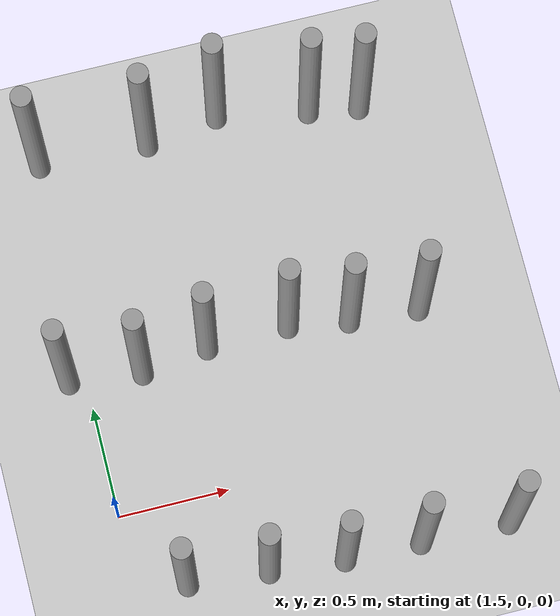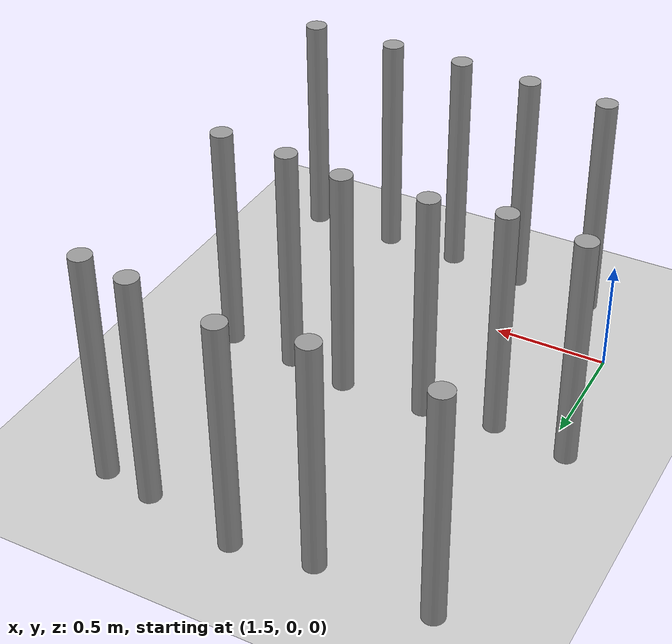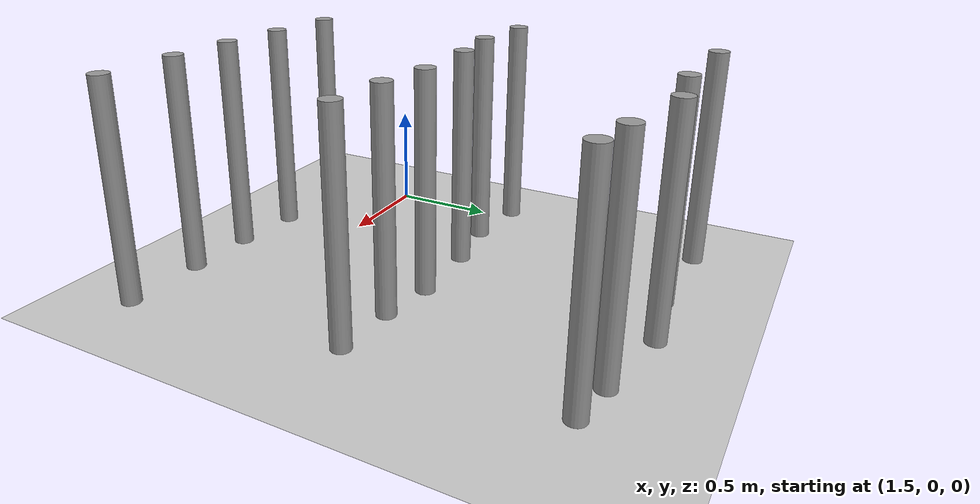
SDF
<sdf version="1.7">
 <world name="default">
  <model name="ground_plane">
   <static>1</static>
   <link name="link">
    <collision name="collision">
     <geometry><plane><normal>0 0 1</normal><size>100 100</size></plane></geometry>
     <surface><friction><ode><mu>100</mu><mu2>50</mu2></ode></friction></surface>
    </collision>
    <visual name="visual">
     <cast_shadows>0</cast_shadows>
     <geometry><plane><normal>0 0 1</normal><size>100 100</size></plane></geometry>
     <material>
      <script><uri>file://media/materials/scripts/gazebo.material</uri><name>Gazebo/Grey</name></script>
     </material>
    </visual>
   </link>
  </model>
  <model name="bar_clone_4">
   <link name="link_0">
    <inertial>
     <mass>0.00953712</mass>
     <inertia>
      <ixx>0.000924862</ixx>
      <ixy>0</ixy>
      <ixz>0</ixz>
      <iyy>0.000924862</iyy>
      <iyz>0</iyz>
      <izz>1.05584e-05</izz>
     </inertia>
    </inertial>
    <visual name="visual">
     <geometry><cylinder><radius>0.0470549</radius><length>1.07567</length></cylinder></geometry>
     <material>
      <lighting>1</lighting>
      <script><uri>file://media/materials/scripts/gazebo.material</uri><name>Gazebo/Grey</name></script>
      <shader type="pixel"><normal_map>__default__</normal_map></shader>
     </material>
    </visual>
    <collision name="collision">
     <geometry><cylinder><radius>0.047055</radius><length>1.07567</length></cylinder></geometry>
     <surface>
      <friction>
       <ode><mu>1</mu><mu2>1</mu2><fdir1>0 0 0</fdir1><slip1>0</slip1><slip2>0</slip2></ode>
       <torsional>
        <coefficient>1</coefficient>
        <patch_radius>0</patch_radius>
        <surface_radius>0</surface_radius>
        <use_patch_radius>1</use_patch_radius>
        <ode><slip>0</slip></ode>
       </torsional>
      </friction>
      <bounce><restitution_coefficient>0</restitution_coefficient><threshold>1e+06</threshold></bounce>
      <contact>
       <collide_without_contact>0</collide_without_contact>
       <collide_without_contact_bitmask>1</collide_without_contact_bitmask>
       <collide_bitmask>1</collide_bitmask>
       <ode>
        <soft_cfm>0</soft_cfm>
        <soft_erp>0.2</soft_erp>
        <kp>1e+13</kp>
        <kd>1</kd>
        <max_vel>0.01</max_vel>
        <min_depth>0</min_depth>
       </ode>
       <bullet>
        <split_impulse>1</split_impulse>
        <split_impulse_penetration_threshold>-0.01</split_impulse_penetration_threshold>
        <soft_cfm>0</soft_cfm>
        <soft_erp>0.2</soft_erp>
        <kp>1e+13</kp>
        <kd>1</kd>
       </bullet>
      </contact>
     </surface>
    </collision>
   </link>
   <static>0</static>
   <pose>1.72439 -0.372293 0.5 0 -0 0</pose>
  </model>
  <model name="bar_clone_5">
   <link name="link_0">
    <inertial>
     <mass>0.00953712</mass>
     <inertia>
      <ixx>0.000924862</ixx>
      <ixy>0</ixy>
      <ixz>0</ixz>
      <iyy>0.000924862</iyy>
      <iyz>0</iyz>
      <izz>1.05584e-05</izz>
     </inertia>
    </inertial>
    <visual name="visual">
     <geometry><cylinder><radius>0.0470549</radius><length>1.07567</length></cylinder></geometry>
     <material>
      <lighting>1</lighting>
      <script><uri>file://media/materials/scripts/gazebo.material</uri><name>Gazebo/Grey</name></script>
      <shader type="pixel"><normal_map>__default__</normal_map></shader>
     </material>
    </visual>
    <collision name="collision">
     <geometry><cylinder><radius>0.047055</radius><length>1.07567</length></cylinder></geometry>
     <surface>
      <friction>
       <ode><mu>1</mu><mu2>1</mu2><fdir1>0 0 0</fdir1><slip1>0</slip1><slip2>0</slip2></ode>
       <torsional>
        <coefficient>1</coefficient>
        <patch_radius>0</patch_radius>
        <surface_radius>0</surface_radius>
        <use_patch_radius>1</use_patch_radius>
        <ode><slip>0</slip></ode>
       </torsional>
      </friction>
      <bounce><restitution_coefficient>0</restitution_coefficient><threshold>1e+06</threshold></bounce>
      <contact>
       <collide_without_contact>0</collide_without_contact>
       <collide_without_contact_bitmask>1</collide_without_contact_bitmask>
       <collide_bitmask>1</collide_bitmask>
       <ode>
        <soft_cfm>0</soft_cfm>
        <soft_erp>0.2</soft_erp>
        <kp>1e+13</kp>
        <kd>1</kd>
        <max_vel>0.01</max_vel>
        <min_depth>0</min_depth>
       </ode>
       <bullet>
        <split_impulse>1</split_impulse>
        <split_impulse_penetration_threshold>-0.01</split_impulse_penetration_threshold>
        <soft_cfm>0</soft_cfm>
        <soft_erp>0.2</soft_erp>
        <kp>1e+13</kp>
        <kd>1</kd>
       </bullet>
      </contact>
     </surface>
    </collision>
   </link>
   <static>0</static>
   <pose>2.08498 -0.403404 0.5 0 -0 0</pose>
  </model>
  <model name="bar_clone_6">
   <link name="link_0">
    <inertial>
     <mass>0.00953712</mass>
     <inertia>
      <ixx>0.000924862</ixx>
      <ixy>0</ixy>
      <ixz>0</ixz>
      <iyy>0.000924862</iyy>
      <iyz>0</iyz>
      <izz>1.05584e-05</izz>
     </inertia>
    </inertial>
    <visual name="visual">
     <geometry><cylinder><radius>0.0470549</radius><length>1.07567</length></cylinder></geometry>
     <material>
      <lighting>1</lighting>
      <script><uri>file://media/materials/scripts/gazebo.material</uri><name>Gazebo/Grey</name></script>
      <shader type="pixel"><normal_map>__default__</normal_map></shader>
     </material>
    </visual>
    <collision name="collision">
     <geometry><cylinder><radius>0.047055</radius><length>1.07567</length></cylinder></geometry>
     <surface>
      <friction>
       <ode><mu>1</mu><mu2>1</mu2><fdir1>0 0 0</fdir1><slip1>0</slip1><slip2>0</slip2></ode>
       <torsional>
        <coefficient>1</coefficient>
        <patch_radius>0</patch_radius>
        <surface_radius>0</surface_radius>
        <use_patch_radius>1</use_patch_radius>
        <ode><slip>0</slip></ode>
       </torsional>
      </friction>
      <bounce><restitution_coefficient>0</restitution_coefficient><threshold>1e+06</threshold></bounce>
      <contact>
       <collide_without_contact>0</collide_without_contact>
       <collide_without_contact_bitmask>1</collide_without_contact_bitmask>
       <collide_bitmask>1</collide_bitmask>
       <ode>
        <soft_cfm>0</soft_cfm>
        <soft_erp>0.2</soft_erp>
        <kp>1e+13</kp>
        <kd>1</kd>
        <max_vel>0.01</max_vel>
        <min_depth>0</min_depth>
       </ode>
       <bullet>
        <split_impulse>1</split_impulse>
        <split_impulse_penetration_threshold>-0.01</split_impulse_penetration_threshold>
        <soft_cfm>0</soft_cfm>
        <soft_erp>0.2</soft_erp>
        <kp>1e+13</kp>
        <kd>1</kd>
       </bullet>
      </contact>
     </surface>
    </collision>
   </link>
   <static>0</static>
   <pose>2.4203 -0.432616 0.5 0 -0 0</pose>
  </model>
  <model name="bar_clone_7">
   <link name="link_0">
    <inertial>
     <mass>0.00953712</mass>
     <inertia>
      <ixx>0.000924862</ixx>
      <ixy>0</ixy>
      <ixz>0</ixz>
      <iyy>0.000924862</iyy>
      <iyz>0</iyz>
      <izz>1.05584e-05</izz>
     </inertia>
    </inertial>
    <visual name="visual">
     <geometry><cylinder><radius>0.0470549</radius><length>1.07567</length></cylinder></geometry>
     <material>
      <lighting>1</lighting>
      <script><uri>file://media/materials/scripts/gazebo.material</uri><name>Gazebo/Grey</name></script>
      <shader type="pixel"><normal_map>__default__</normal_map></shader>
     </material>
    </visual>
    <collision name="collision">
     <geometry><cylinder><radius>0.047055</radius><length>1.07567</length></cylinder></geometry>
     <surface>
      <friction>
       <ode><mu>1</mu><mu2>1</mu2><fdir1>0 0 0</fdir1><slip1>0</slip1><slip2>0</slip2></ode>
       <torsional>
        <coefficient>1</coefficient>
        <patch_radius>0</patch_radius>
        <surface_radius>0</surface_radius>
        <use_patch_radius>1</use_patch_radius>
        <ode><slip>0</slip></ode>
       </torsional>
      </friction>
      <bounce><restitution_coefficient>0</restitution_coefficient><threshold>1e+06</threshold></bounce>
      <contact>
       <collide_without_contact>0</collide_without_contact>
       <collide_without_contact_bitmask>1</collide_without_contact_bitmask>
       <collide_bitmask>1</collide_bitmask>
       <ode>
        <soft_cfm>0</soft_cfm>
        <soft_erp>0.2</soft_erp>
        <kp>1e+13</kp>
        <kd>1</kd>
        <max_vel>0.01</max_vel>
        <min_depth>0</min_depth>
       </ode>
       <bullet>
        <split_impulse>1</split_impulse>
        <split_impulse_penetration_threshold>-0.01</split_impulse_penetration_threshold>
        <soft_cfm>0</soft_cfm>
        <soft_erp>0.2</soft_erp>
        <kp>1e+13</kp>
        <kd>1</kd>
       </bullet>
      </contact>
     </surface>
    </collision>
   </link>
   <static>0</static>
   <pose>2.76123 -0.439279 0.5 0 -0 0</pose>
  </model>
  <model name="bar_clone_8">
   <link name="link_0">
    <inertial>
     <mass>0.00953712</mass>
     <inertia>
      <ixx>0.000924862</ixx>
      <ixy>0</ixy>
      <ixz>0</ixz>
      <iyy>0.000924862</iyy>
      <iyz>0</iyz>
      <izz>1.05584e-05</izz>
     </inertia>
    </inertial>
    <visual name="visual">
     <geometry><cylinder><radius>0.0470549</radius><length>1.07567</length></cylinder></geometry>
     <material>
      <lighting>1</lighting>
      <script><uri>file://media/materials/scripts/gazebo.material</uri><name>Gazebo/Grey</name></script>
      <shader type="pixel"><normal_map>__default__</normal_map></shader>
     </material>
    </visual>
    <collision name="collision">
     <geometry><cylinder><radius>0.047055</radius><length>1.07567</length></cylinder></geometry>
     <surface>
      <friction>
       <ode><mu>1</mu><mu2>1</mu2><fdir1>0 0 0</fdir1><slip1>0</slip1><slip2>0</slip2></ode>
       <torsional>
        <coefficient>1</coefficient>
        <patch_radius>0</patch_radius>
        <surface_radius>0</surface_radius>
        <use_patch_radius>1</use_patch_radius>
        <ode><slip>0</slip></ode>
       </torsional>
      </friction>
      <bounce><restitution_coefficient>0</restitution_coefficient><threshold>1e+06</threshold></bounce>
      <contact>
       <collide_without_contact>0</collide_without_contact>
       <collide_without_contact_bitmask>1</collide_without_contact_bitmask>
       <collide_bitmask>1</collide_bitmask>
       <ode>
        <soft_cfm>0</soft_cfm>
        <soft_erp>0.2</soft_erp>
        <kp>1e+13</kp>
        <kd>1</kd>
        <max_vel>0.01</max_vel>
        <min_depth>0</min_depth>
       </ode>
       <bullet>
        <split_impulse>1</split_impulse>
        <split_impulse_penetration_threshold>-0.01</split_impulse_penetration_threshold>
        <soft_cfm>0</soft_cfm>
        <soft_erp>0.2</soft_erp>
        <kp>1e+13</kp>
        <kd>1</kd>
       </bullet>
      </contact>
     </surface>
    </collision>
   </link>
   <static>0</static>
   <pose>3.15901 -0.447083 0.5 0 -0 0</pose>
  </model>
  <model name="bar_clone_13">
   <link name="link_0">
    <inertial>
     <mass>0.00953712</mass>
     <inertia>
      <ixx>0.000924862</ixx>
      <ixy>0</ixy>
      <ixz>0</ixz>
      <iyy>0.000924862</iyy>
      <iyz>0</iyz>
      <izz>1.05584e-05</izz>
     </inertia>
    </inertial>
    <visual name="visual">
     <geometry><cylinder><radius>0.0470549</radius><length>1.07567</length></cylinder></geometry>
     <material>
      <lighting>1</lighting>
      <script><uri>file://media/materials/scripts/gazebo.material</uri><name>Gazebo/Grey</name></script>
      <shader type="pixel"><normal_map>__default__</normal_map></shader>
     </material>
    </visual>
    <collision name="collision">
     <geometry><cylinder><radius>0.047055</radius><length>1.07567</length></cylinder></geometry>
     <surface>
      <friction>
       <ode><mu>1</mu><mu2>1</mu2><fdir1>0 0 0</fdir1><slip1>0</slip1><slip2>0</slip2></ode>
       <torsional>
        <coefficient>1</coefficient>
        <patch_radius>0</patch_radius>
        <surface_radius>0</surface_radius>
        <use_patch_radius>1</use_patch_radius>
        <ode><slip>0</slip></ode>
       </torsional>
      </friction>
      <bounce><restitution_coefficient>0</restitution_coefficient><threshold>1e+06</threshold></bounce>
      <contact>
       <collide_without_contact>0</collide_without_contact>
       <collide_without_contact_bitmask>1</collide_without_contact_bitmask>
       <collide_bitmask>1</collide_bitmask>
       <ode>
        <soft_cfm>0</soft_cfm>
        <soft_erp>0.2</soft_erp>
        <kp>1e+13</kp>
        <kd>1</kd>
        <max_vel>0.01</max_vel>
        <min_depth>0</min_depth>
       </ode>
       <bullet>
        <split_impulse>1</split_impulse>
        <split_impulse_penetration_threshold>-0.01</split_impulse_penetration_threshold>
        <soft_cfm>0</soft_cfm>
        <soft_erp>0.2</soft_erp>
        <kp>1e+13</kp>
        <kd>1</kd>
       </bullet>
      </contact>
     </surface>
    </collision>
   </link>
   <static>0</static>
   <pose>1.42369 0.635486 0.5 0 -0 0</pose>
  </model>
  <model name="bar_clone_14">
   <link name="link_0">
    <inertial>
     <mass>0.00953712</mass>
     <inertia>
      <ixx>0.000924862</ixx>
      <ixy>0</ixy>
      <ixz>0</ixz>
      <iyy>0.000924862</iyy>
      <iyz>0</iyz>
      <izz>1.05584e-05</izz>
     </inertia>
    </inertial>
    <visual name="visual">
     <geometry><cylinder><radius>0.0470549</radius><length>1.07567</length></cylinder></geometry>
     <material>
      <lighting>1</lighting>
      <script><uri>file://media/materials/scripts/gazebo.material</uri><name>Gazebo/Grey</name></script>
      <shader type="pixel"><normal_map>__default__</normal_map></shader>
     </material>
    </visual>
    <collision name="collision">
     <geometry><cylinder><radius>0.047055</radius><length>1.07567</length></cylinder></geometry>
     <surface>
      <friction>
       <ode><mu>1</mu><mu2>1</mu2><fdir1>0 0 0</fdir1><slip1>0</slip1><slip2>0</slip2></ode>
       <torsional>
        <coefficient>1</coefficient>
        <patch_radius>0</patch_radius>
        <surface_radius>0</surface_radius>
        <use_patch_radius>1</use_patch_radius>
        <ode><slip>0</slip></ode>
       </torsional>
      </friction>
      <bounce><restitution_coefficient>0</restitution_coefficient><threshold>1e+06</threshold></bounce>
      <contact>
       <collide_without_contact>0</collide_without_contact>
       <collide_without_contact_bitmask>1</collide_without_contact_bitmask>
       <collide_bitmask>1</collide_bitmask>
       <ode>
        <soft_cfm>0</soft_cfm>
        <soft_erp>0.2</soft_erp>
        <kp>1e+13</kp>
        <kd>1</kd>
        <max_vel>0.01</max_vel>
        <min_depth>0</min_depth>
       </ode>
       <bullet>
        <split_impulse>1</split_impulse>
        <split_impulse_penetration_threshold>-0.01</split_impulse_penetration_threshold>
        <soft_cfm>0</soft_cfm>
        <soft_erp>0.2</soft_erp>
        <kp>1e+13</kp>
        <kd>1</kd>
       </bullet>
      </contact>
     </surface>
    </collision>
   </link>
   <static>0</static>
   <pose>1.75296 0.598302 0.5 0 -0 0</pose>
  </model>
  <model name="bar_clone_15">
   <link name="link_0">
    <inertial>
     <mass>0.00953712</mass>
     <inertia>
      <ixx>0.000924862</ixx>
      <ixy>0</ixy>
      <ixz>0</ixz>
      <iyy>0.000924862</iyy>
      <iyz>0</iyz>
      <izz>1.05584e-05</izz>
     </inertia>
    </inertial>
    <visual name="visual">
     <geometry><cylinder><radius>0.0470549</radius><length>1.07567</length></cylinder></geometry>
     <material>
      <lighting>1</lighting>
      <script><uri>file://media/materials/scripts/gazebo.material</uri><name>Gazebo/Grey</name></script>
      <shader type="pixel"><normal_map>__default__</normal_map></shader>
     </material>
    </visual>
    <collision name="collision">
     <geometry><cylinder><radius>0.047055</radius><length>1.07567</length></cylinder></geometry>
     <surface>
      <friction>
       <ode><mu>1</mu><mu2>1</mu2><fdir1>0 0 0</fdir1><slip1>0</slip1><slip2>0</slip2></ode>
       <torsional>
        <coefficient>1</coefficient>
        <patch_radius>0</patch_radius>
        <surface_radius>0</surface_radius>
        <use_patch_radius>1</use_patch_radius>
        <ode><slip>0</slip></ode>
       </torsional>
      </friction>
      <bounce><restitution_coefficient>0</restitution_coefficient><threshold>1e+06</threshold></bounce>
      <contact>
       <collide_without_contact>0</collide_without_contact>
       <collide_without_contact_bitmask>1</collide_without_contact_bitmask>
       <collide_bitmask>1</collide_bitmask>
       <ode>
        <soft_cfm>0</soft_cfm>
        <soft_erp>0.2</soft_erp>
        <kp>1e+13</kp>
        <kd>1</kd>
        <max_vel>0.01</max_vel>
        <min_depth>0</min_depth>
       </ode>
       <bullet>
        <split_impulse>1</split_impulse>
        <split_impulse_penetration_threshold>-0.01</split_impulse_penetration_threshold>
        <soft_cfm>0</soft_cfm>
        <soft_erp>0.2</soft_erp>
        <kp>1e+13</kp>
        <kd>1</kd>
       </bullet>
      </contact>
     </surface>
    </collision>
   </link>
   <static>0</static>
   <pose>2.05936 0.640918 0.5 0 -0 0</pose>
  </model>
  <model name="bar_clone_16">
   <link name="link_0">
    <inertial>
     <mass>0.00953712</mass>
     <inertia>
      <ixx>0.000924862</ixx>
      <ixy>0</ixy>
      <ixz>0</ixz>
      <iyy>0.000924862</iyy>
      <iyz>0</iyz>
      <izz>1.05584e-05</izz>
     </inertia>
    </inertial>
    <visual name="visual">
     <geometry><cylinder><radius>0.0470549</radius><length>1.07567</length></cylinder></geometry>
     <material>
      <lighting>1</lighting>
      <script><uri>file://media/materials/scripts/gazebo.material</uri><name>Gazebo/Grey</name></script>
      <shader type="pixel"><normal_map>__default__</normal_map></shader>
     </material>
    </visual>
    <collision name="collision">
     <geometry><cylinder><radius>0.047055</radius><length>1.07567</length></cylinder></geometry>
     <surface>
      <friction>
       <ode><mu>1</mu><mu2>1</mu2><fdir1>0 0 0</fdir1><slip1>0</slip1><slip2>0</slip2></ode>
       <torsional>
        <coefficient>1</coefficient>
        <patch_radius>0</patch_radius>
        <surface_radius>0</surface_radius>
        <use_patch_radius>1</use_patch_radius>
        <ode><slip>0</slip></ode>
       </torsional>
      </friction>
      <bounce><restitution_coefficient>0</restitution_coefficient><threshold>1e+06</threshold></bounce>
      <contact>
       <collide_without_contact>0</collide_without_contact>
       <collide_without_contact_bitmask>1</collide_without_contact_bitmask>
       <collide_bitmask>1</collide_bitmask>
       <ode>
        <soft_cfm>0</soft_cfm>
        <soft_erp>0.2</soft_erp>
        <kp>1e+13</kp>
        <kd>1</kd>
        <max_vel>0.01</max_vel>
        <min_depth>0</min_depth>
       </ode>
       <bullet>
        <split_impulse>1</split_impulse>
        <split_impulse_penetration_threshold>-0.01</split_impulse_penetration_threshold>
        <soft_cfm>0</soft_cfm>
        <soft_erp>0.2</soft_erp>
        <kp>1e+13</kp>
        <kd>1</kd>
       </bullet>
      </contact>
     </surface>
    </collision>
   </link>
   <static>0</static>
   <pose>2.43228 0.649265 0.5 0 -0 0</pose>
  </model>
  <model name="bar_clone_17">
   <link name="link_0">
    <inertial>
     <mass>0.00953712</mass>
     <inertia>
      <ixx>0.000924862</ixx>
      <ixy>0</ixy>
      <ixz>0</ixz>
      <iyy>0.000924862</iyy>
      <iyz>0</iyz>
      <izz>1.05584e-05</izz>
     </inertia>
    </inertial>
    <visual name="visual">
     <geometry><cylinder><radius>0.0470549</radius><length>1.07567</length></cylinder></geometry>
     <material>
      <lighting>1</lighting>
      <script><uri>file://media/materials/scripts/gazebo.material</uri><name>Gazebo/Grey</name></script>
      <shader type="pixel"><normal_map>__default__</normal_map></shader>
     </material>
    </visual>
    <collision name="collision">
     <geometry><cylinder><radius>0.047055</radius><length>1.07567</length></cylinder></geometry>
     <surface>
      <friction>
       <ode><mu>1</mu><mu2>1</mu2><fdir1>0 0 0</fdir1><slip1>0</slip1><slip2>0</slip2></ode>
       <torsional>
        <coefficient>1</coefficient>
        <patch_radius>0</patch_radius>
        <surface_radius>0</surface_radius>
        <use_patch_radius>1</use_patch_radius>
        <ode><slip>0</slip></ode>
       </torsional>
      </friction>
      <bounce><restitution_coefficient>0</restitution_coefficient><threshold>1e+06</threshold></bounce>
      <contact>
       <collide_without_contact>0</collide_without_contact>
       <collide_without_contact_bitmask>1</collide_without_contact_bitmask>
       <collide_bitmask>1</collide_bitmask>
       <ode>
        <soft_cfm>0</soft_cfm>
        <soft_erp>0.2</soft_erp>
        <kp>1e+13</kp>
        <kd>1</kd>
        <max_vel>0.01</max_vel>
        <min_depth>0</min_depth>
       </ode>
       <bullet>
        <split_impulse>1</split_impulse>
        <split_impulse_penetration_threshold>-0.01</split_impulse_penetration_threshold>
        <soft_cfm>0</soft_cfm>
        <soft_erp>0.2</soft_erp>
        <kp>1e+13</kp>
        <kd>1</kd>
       </bullet>
      </contact>
     </surface>
    </collision>
   </link>
   <static>0</static>
   <pose>2.70434 0.607067 0.5 0 -0 0</pose>
  </model>
  <model name="bar_clone_18">
   <link name="link_0">
    <inertial>
     <mass>0.00953712</mass>
     <inertia>
      <ixx>0.000924862</ixx>
      <ixy>0</ixy>
      <ixz>0</ixz>
      <iyy>0.000924862</iyy>
      <iyz>0</iyz>
      <izz>1.05584e-05</izz>
     </inertia>
    </inertial>
    <visual name="visual">
     <geometry><cylinder><radius>0.0470549</radius><length>1.07567</length></cylinder></geometry>
     <material>
      <lighting>1</lighting>
      <script><uri>file://media/materials/scripts/gazebo.material</uri><name>Gazebo/Grey</name></script>
      <shader type="pixel"><normal_map>__default__</normal_map></shader>
     </material>
    </visual>
    <collision name="collision">
     <geometry><cylinder><radius>0.047055</radius><length>1.07567</length></cylinder></geometry>
     <surface>
      <friction>
       <ode><mu>1</mu><mu2>1</mu2><fdir1>0 0 0</fdir1><slip1>0</slip1><slip2>0</slip2></ode>
       <torsional>
        <coefficient>1</coefficient>
        <patch_radius>0</patch_radius>
        <surface_radius>0</surface_radius>
        <use_patch_radius>1</use_patch_radius>
        <ode><slip>0</slip></ode>
       </torsional>
      </friction>
      <bounce><restitution_coefficient>0</restitution_coefficient><threshold>1e+06</threshold></bounce>
      <contact>
       <collide_without_contact>0</collide_without_contact>
       <collide_without_contact_bitmask>1</collide_without_contact_bitmask>
       <collide_bitmask>1</collide_bitmask>
       <ode>
        <soft_cfm>0</soft_cfm>
        <soft_erp>0.2</soft_erp>
        <kp>1e+13</kp>
        <kd>1</kd>
        <max_vel>0.01</max_vel>
        <min_depth>0</min_depth>
       </ode>
       <bullet>
        <split_impulse>1</split_impulse>
        <split_impulse_penetration_threshold>-0.01</split_impulse_penetration_threshold>
        <soft_cfm>0</soft_cfm>
        <soft_erp>0.2</soft_erp>
        <kp>1e+13</kp>
        <kd>1</kd>
       </bullet>
      </contact>
     </surface>
    </collision>
   </link>
   <static>0</static>
   <pose>3.01881 0.587003 0.5 0 -0 0</pose>
  </model>
  <model name="bar_clone_19">
   <link name="link_0">
    <inertial>
     <mass>0.00953712</mass>
     <inertia>
      <ixx>0.000924862</ixx>
      <ixy>0</ixy>
      <ixz>0</ixz>
      <iyy>0.000924862</iyy>
      <iyz>0</iyz>
      <izz>1.05584e-05</izz>
     </inertia>
    </inertial>
    <visual name="visual">
     <geometry><cylinder><radius>0.0470549</radius><length>1.07567</length></cylinder></geometry>
     <material>
      <lighting>1</lighting>
      <script><uri>file://media/materials/scripts/gazebo.material</uri><name>Gazebo/Grey</name></script>
      <shader type="pixel"><normal_map>__default__</normal_map></shader>
     </material>
    </visual>
    <collision name="collision">
     <geometry><cylinder><radius>0.047055</radius><length>1.07567</length></cylinder></geometry>
     <surface>
      <friction>
       <ode><mu>1</mu><mu2>1</mu2><fdir1>0 0 0</fdir1><slip1>0</slip1><slip2>0</slip2></ode>
       <torsional>
        <coefficient>1</coefficient>
        <patch_radius>0</patch_radius>
        <surface_radius>0</surface_radius>
        <use_patch_radius>1</use_patch_radius>
        <ode><slip>0</slip></ode>
       </torsional>
      </friction>
      <bounce><restitution_coefficient>0</restitution_coefficient><threshold>1e+06</threshold></bounce>
      <contact>
       <collide_without_contact>0</collide_without_contact>
       <collide_without_contact_bitmask>1</collide_without_contact_bitmask>
       <collide_bitmask>1</collide_bitmask>
       <ode>
        <soft_cfm>0</soft_cfm>
        <soft_erp>0.2</soft_erp>
        <kp>1e+13</kp>
        <kd>1</kd>
        <max_vel>0.01</max_vel>
        <min_depth>0</min_depth>
       </ode>
       <bullet>
        <split_impulse>1</split_impulse>
        <split_impulse_penetration_threshold>-0.01</split_impulse_penetration_threshold>
        <soft_cfm>0</soft_cfm>
        <soft_erp>0.2</soft_erp>
        <kp>1e+13</kp>
        <kd>1</kd>
       </bullet>
      </contact>
     </surface>
    </collision>
   </link>
   <static>0</static>
   <pose>2.99539 1.56896 0.5 0 -0 0</pose>
  </model>
  <model name="bar_clone_20">
   <link name="link_0">
    <inertial>
     <mass>0.00953712</mass>
     <inertia>
      <ixx>0.000924862</ixx>
      <ixy>0</ixy>
      <ixz>0</ixz>
      <iyy>0.000924862</iyy>
      <iyz>0</iyz>
      <izz>1.05584e-05</izz>
     </inertia>
    </inertial>
    <visual name="visual">
     <geometry><cylinder><radius>0.0470549</radius><length>1.07567</length></cylinder></geometry>
     <material>
      <lighting>1</lighting>
      <script><uri>file://media/materials/scripts/gazebo.material</uri><name>Gazebo/Grey</name></script>
      <shader type="pixel"><normal_map>__default__</normal_map></shader>
     </material>
    </visual>
    <collision name="collision">
     <geometry><cylinder><radius>0.047055</radius><length>1.07567</length></cylinder></geometry>
     <surface>
      <friction>
       <ode><mu>1</mu><mu2>1</mu2><fdir1>0 0 0</fdir1><slip1>0</slip1><slip2>0</slip2></ode>
       <torsional>
        <coefficient>1</coefficient>
        <patch_radius>0</patch_radius>
        <surface_radius>0</surface_radius>
        <use_patch_radius>1</use_patch_radius>
        <ode><slip>0</slip></ode>
       </torsional>
      </friction>
      <bounce><restitution_coefficient>0</restitution_coefficient><threshold>1e+06</threshold></bounce>
      <contact>
       <collide_without_contact>0</collide_without_contact>
       <collide_without_contact_bitmask>1</collide_without_contact_bitmask>
       <collide_bitmask>1</collide_bitmask>
       <ode>
        <soft_cfm>0</soft_cfm>
        <soft_erp>0.2</soft_erp>
        <kp>1e+13</kp>
        <kd>1</kd>
        <max_vel>0.01</max_vel>
        <min_depth>0</min_depth>
       </ode>
       <bullet>
        <split_impulse>1</split_impulse>
        <split_impulse_penetration_threshold>-0.01</split_impulse_penetration_threshold>
        <soft_cfm>0</soft_cfm>
        <soft_erp>0.2</soft_erp>
        <kp>1e+13</kp>
        <kd>1</kd>
       </bullet>
      </contact>
     </surface>
    </collision>
   </link>
   <static>0</static>
   <pose>2.76729 1.60477 0.5 0 -0 0</pose>
  </model>
  <model name="bar_clone_21">
   <link name="link_0">
    <inertial>
     <mass>0.00953712</mass>
     <inertia>
      <ixx>0.000924862</ixx>
      <ixy>0</ixy>
      <ixz>0</ixz>
      <iyy>0.000924862</iyy>
      <iyz>0</iyz>
      <izz>1.05584e-05</izz>
     </inertia>
    </inertial>
    <visual name="visual">
     <geometry><cylinder><radius>0.0470549</radius><length>1.07567</length></cylinder></geometry>
     <material>
      <lighting>1</lighting>
      <script><uri>file://media/materials/scripts/gazebo.material</uri><name>Gazebo/Grey</name></script>
      <shader type="pixel"><normal_map>__default__</normal_map></shader>
     </material>
    </visual>
    <collision name="collision">
     <geometry><cylinder><radius>0.047055</radius><length>1.07567</length></cylinder></geometry>
     <surface>
      <friction>
       <ode><mu>1</mu><mu2>1</mu2><fdir1>0 0 0</fdir1><slip1>0</slip1><slip2>0</slip2></ode>
       <torsional>
        <coefficient>1</coefficient>
        <patch_radius>0</patch_radius>
        <surface_radius>0</surface_radius>
        <use_patch_radius>1</use_patch_radius>
        <ode><slip>0</slip></ode>
       </torsional>
      </friction>
      <bounce><restitution_coefficient>0</restitution_coefficient><threshold>1e+06</threshold></bounce>
      <contact>
       <collide_without_contact>0</collide_without_contact>
       <collide_without_contact_bitmask>1</collide_without_contact_bitmask>
       <collide_bitmask>1</collide_bitmask>
       <ode>
        <soft_cfm>0</soft_cfm>
        <soft_erp>0.2</soft_erp>
        <kp>1e+13</kp>
        <kd>1</kd>
        <max_vel>0.01</max_vel>
        <min_depth>0</min_depth>
       </ode>
       <bullet>
        <split_impulse>1</split_impulse>
        <split_impulse_penetration_threshold>-0.01</split_impulse_penetration_threshold>
        <soft_cfm>0</soft_cfm>
        <soft_erp>0.2</soft_erp>
        <kp>1e+13</kp>
        <kd>1</kd>
       </bullet>
      </contact>
     </surface>
    </collision>
   </link>
   <static>0</static>
   <pose>2.0202 1.62841 0.5 0 -0 0</pose>
  </model>
  <model name="bar_clone_22">
   <link name="link_0">
    <inertial>
     <mass>0.00953712</mass>
     <inertia>
      <ixx>0.000924862</ixx>
      <ixy>0</ixy>
      <ixz>0</ixz>
      <iyy>0.000924862</iyy>
      <iyz>0</iyz>
      <izz>1.05584e-05</izz>
     </inertia>
    </inertial>
    <visual name="visual">
     <geometry><cylinder><radius>0.0470549</radius><length>1.07567</length></cylinder></geometry>
     <material>
      <lighting>1</lighting>
      <script><uri>file://media/materials/scripts/gazebo.material</uri><name>Gazebo/Grey</name></script>
      <shader type="pixel"><normal_map>__default__</normal_map></shader>
     </material>
    </visual>
    <collision name="collision">
     <geometry><cylinder><radius>0.047055</radius><length>1.07567</length></cylinder></geometry>
     <surface>
      <friction>
       <ode><mu>1</mu><mu2>1</mu2><fdir1>0 0 0</fdir1><slip1>0</slip1><slip2>0</slip2></ode>
       <torsional>
        <coefficient>1</coefficient>
        <patch_radius>0</patch_radius>
        <surface_radius>0</surface_radius>
        <use_patch_radius>1</use_patch_radius>
        <ode><slip>0</slip></ode>
       </torsional>
      </friction>
      <bounce><restitution_coefficient>0</restitution_coefficient><threshold>1e+06</threshold></bounce>
      <contact>
       <collide_without_contact>0</collide_without_contact>
       <collide_without_contact_bitmask>1</collide_without_contact_bitmask>
       <collide_bitmask>1</collide_bitmask>
       <ode>
        <soft_cfm>0</soft_cfm>
        <soft_erp>0.2</soft_erp>
        <kp>1e+13</kp>
        <kd>1</kd>
        <max_vel>0.01</max_vel>
        <min_depth>0</min_depth>
       </ode>
       <bullet>
        <split_impulse>1</split_impulse>
        <split_impulse_penetration_threshold>-0.01</split_impulse_penetration_threshold>
        <soft_cfm>0</soft_cfm>
        <soft_erp>0.2</soft_erp>
        <kp>1e+13</kp>
        <kd>1</kd>
       </bullet>
      </contact>
     </surface>
    </collision>
   </link>
   <static>0</static>
   <pose>2.35385 1.68189 0.5 0 -0 0</pose>
  </model>
  <model name="bar_clone_23">
   <link name="link_0">
    <inertial>
     <mass>0.00953712</mass>
     <inertia>
      <ixx>0.000924862</ixx>
      <ixy>0</ixy>
      <ixz>0</ixz>
      <iyy>0.000924862</iyy>
      <iyz>0</iyz>
      <izz>1.05584e-05</izz>
     </inertia>
    </inertial>
    <visual name="visual">
     <geometry><cylinder><radius>0.0470549</radius><length>1.07567</length></cylinder></geometry>
     <material>
      <lighting>1</lighting>
      <script><uri>file://media/materials/scripts/gazebo.material</uri><name>Gazebo/Grey</name></script>
      <shader type="pixel"><normal_map>__default__</normal_map></shader>
     </material>
    </visual>
    <collision name="collision">
     <geometry><cylinder><radius>0.047055</radius><length>1.07567</length></cylinder></geometry>
     <surface>
      <friction>
       <ode><mu>1</mu><mu2>1</mu2><fdir1>0 0 0</fdir1><slip1>0</slip1><slip2>0</slip2></ode>
       <torsional>
        <coefficient>1</coefficient>
        <patch_radius>0</patch_radius>
        <surface_radius>0</surface_radius>
        <use_patch_radius>1</use_patch_radius>
        <ode><slip>0</slip></ode>
       </torsional>
      </friction>
      <bounce><restitution_coefficient>0</restitution_coefficient><threshold>1e+06</threshold></bounce>
      <contact>
       <collide_without_contact>0</collide_without_contact>
       <collide_without_contact_bitmask>1</collide_without_contact_bitmask>
       <collide_bitmask>1</collide_bitmask>
       <ode>
        <soft_cfm>0</soft_cfm>
        <soft_erp>0.2</soft_erp>
        <kp>1e+13</kp>
        <kd>1</kd>
        <max_vel>0.01</max_vel>
        <min_depth>0</min_depth>
       </ode>
       <bullet>
        <split_impulse>1</split_impulse>
        <split_impulse_penetration_threshold>-0.01</split_impulse_penetration_threshold>
        <soft_cfm>0</soft_cfm>
        <soft_erp>0.2</soft_erp>
        <kp>1e+13</kp>
        <kd>1</kd>
       </bullet>
      </contact>
     </surface>
    </collision>
   </link>
   <static>0</static>
   <pose>1.52192 1.64843 0.5 0 -0 0</pose>
  </model>
 </world>
</sdf>
